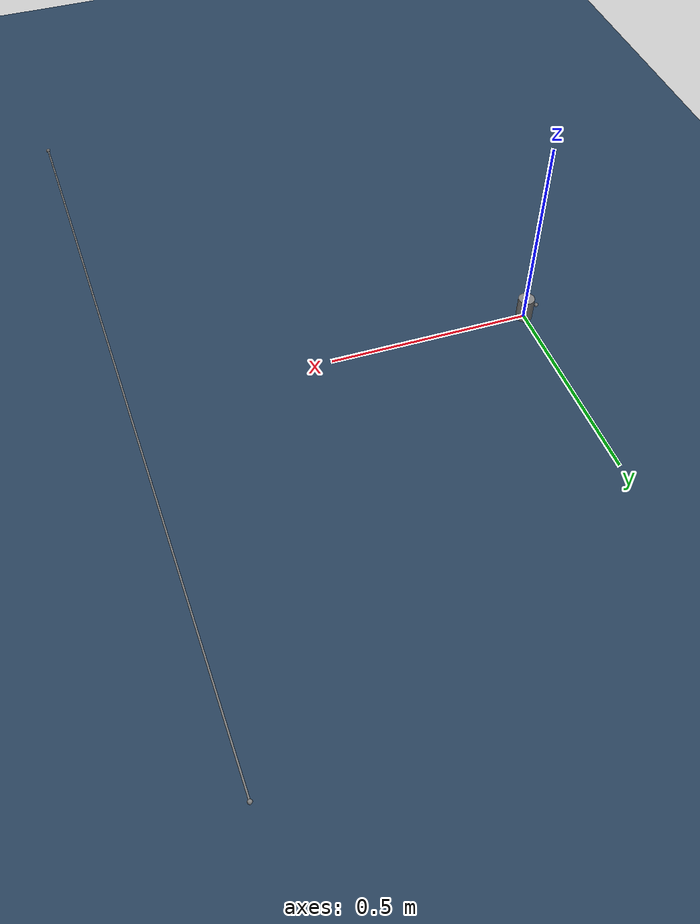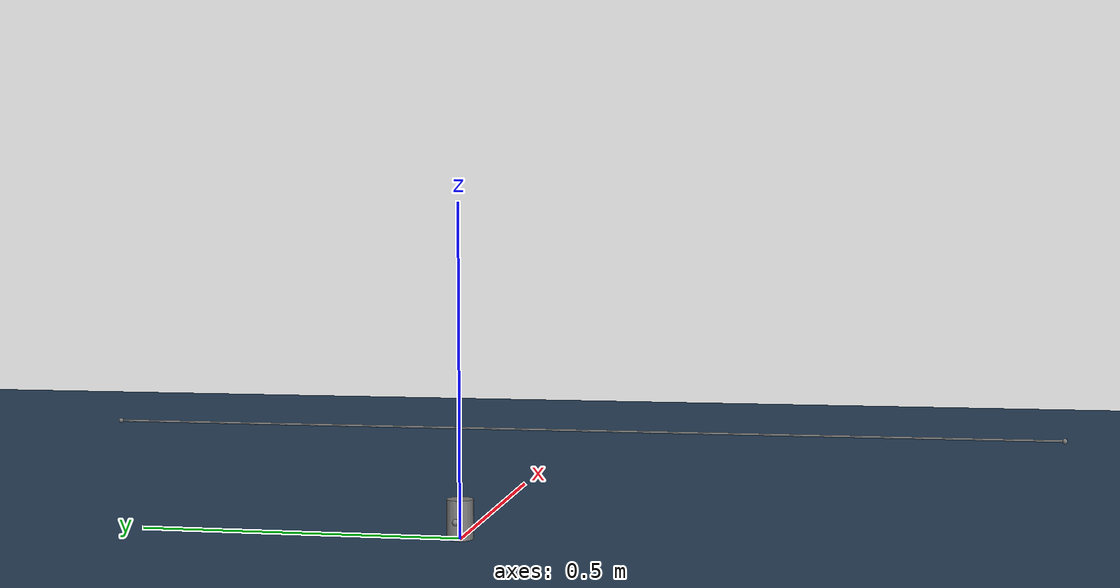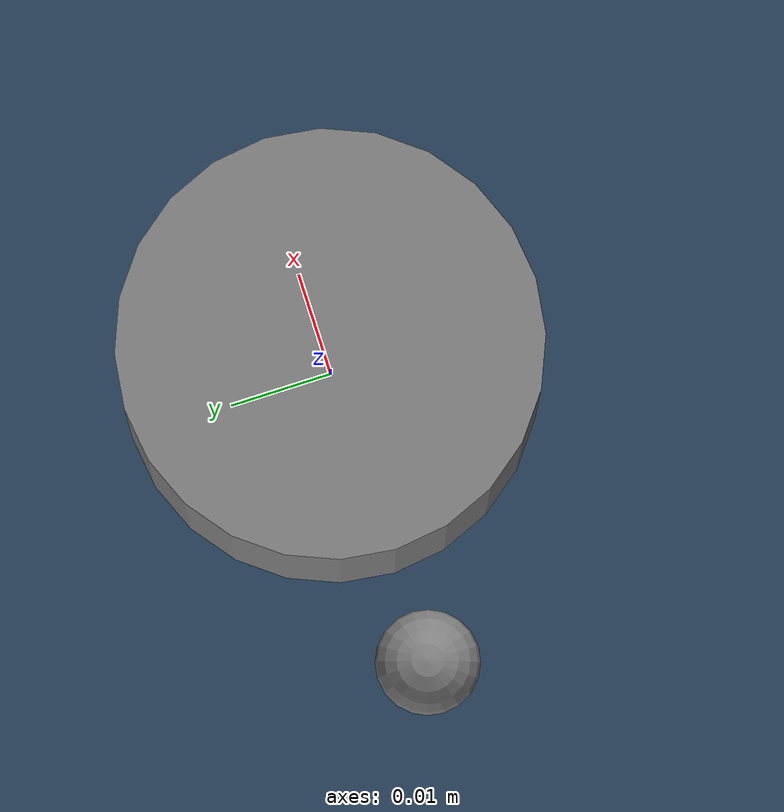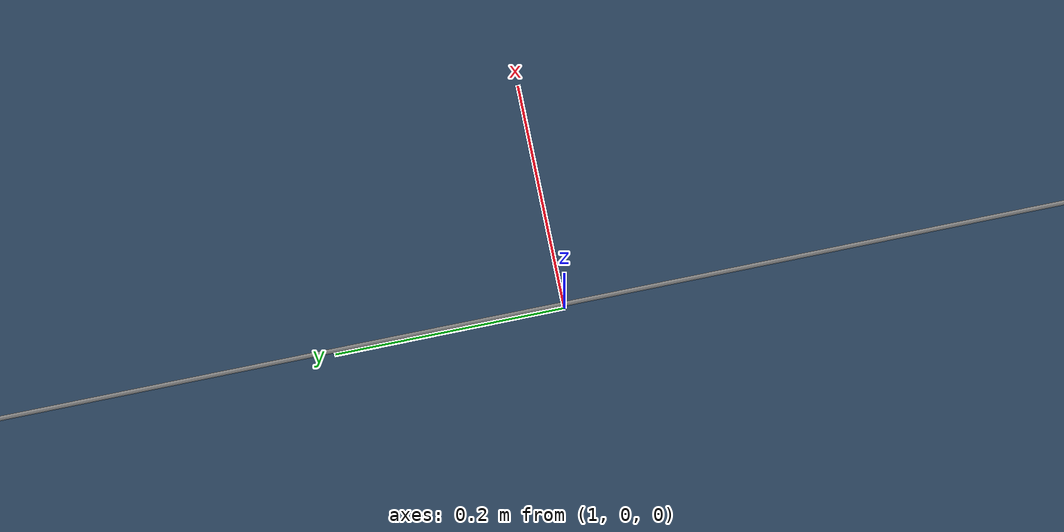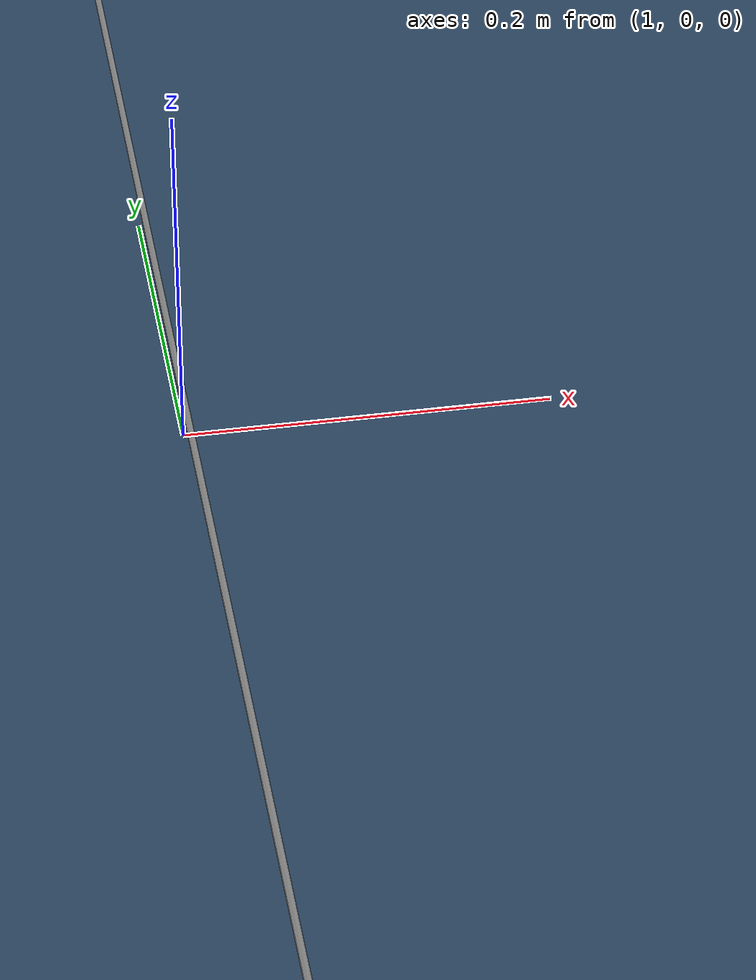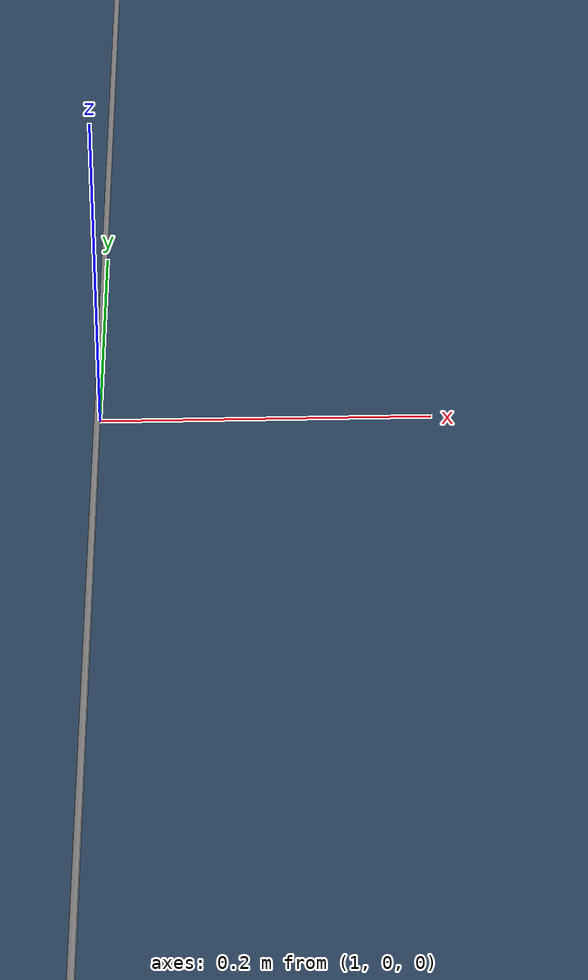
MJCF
<mujoco model="Kamal">
    <option gravity="0 -9.81 0"/>

    <visual>
        <headlight diffuse="0.6 0.6 0.6" ambient="0.3 0.3 0.3" specular="0 0 0"/>
        <rgba haze="0.15 0.25 0.35 1"/>
        <global azimuth="-120" elevation="-20"/>
    </visual>

    <asset>
        <texture type="skybox" builtin="gradient" rgb1="0.3 0.5 0.7" rgb2="0 0 0" width="512" height="3072"/>
        <texture type="2d" name="groundplane" builtin="checker" mark="edge" rgb1="0.2 0.3 0.4" rgb2="0.1 0.2 0.3"
        markrgb="0.8 0.8 0.8" width="300" height="300"/>
        <material name="groundplane" texture="groundplane" texuniform="true" texrepeat="5 5" reflectance="0.1"/>
    </asset>

    <worldbody>

        <light pos="0 0 1.5" dir="0 0 -1" directional="true"/>
        <geom name="floor" size="0 0 0.05" type="plane" material="groundplane"/>

        <site name="u1" pos="1 1 0.03"/>
        <site name="u2" pos="1 -1 0.03"/>

        <body name="ee" pos="0 0 0.03">
            <joint/>
            <geom name="p1" type="cylinder" size="0.02 0.03" rgba="0.5 0.5 0.5 1"/>
                <site name="side1" pos="-0.03 0 0"/>
        </body>

    </worldbody>

    <tendon>
        <spatial name="tendon1" width=".002" damping="10" stiffness="100">
            <site site="u1"/>
            <geom geom="p1" sidesite="side1"/>
            <site site="u2"/>
        </spatial>
    </tendon>

    <actuator>
        <motor name="tendon1" tendon="tendon1" ctrlrange="-200 200"/>
    </actuator>
</mujoco>
